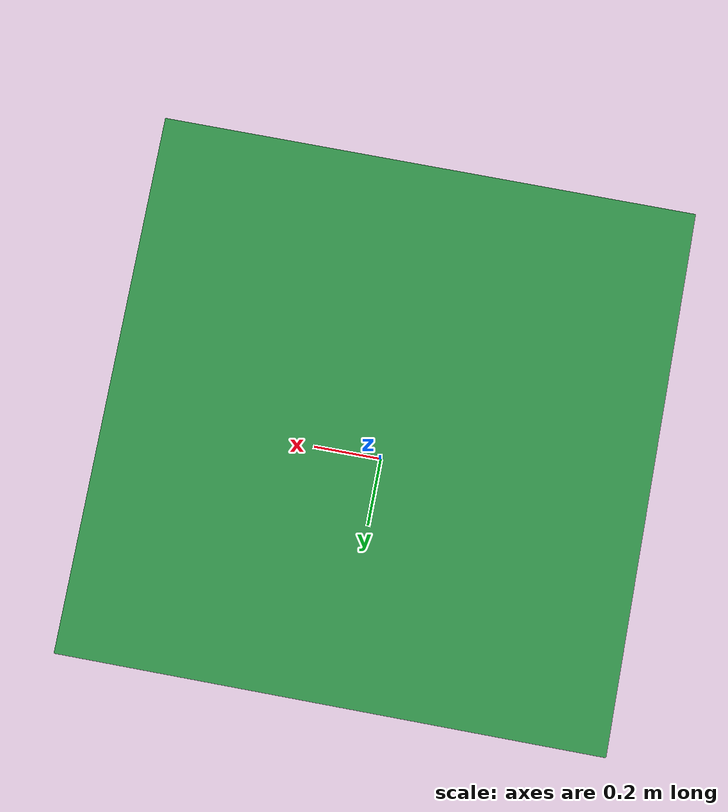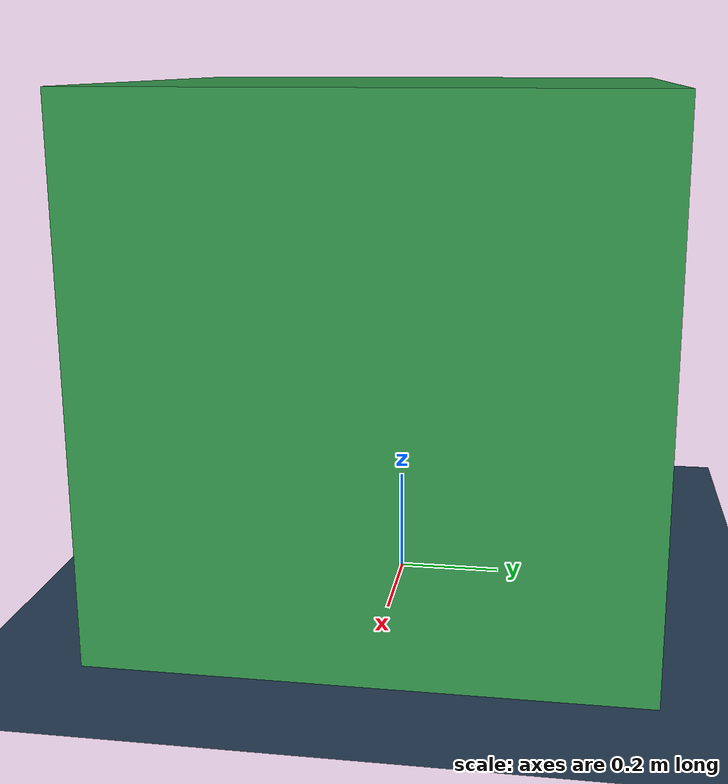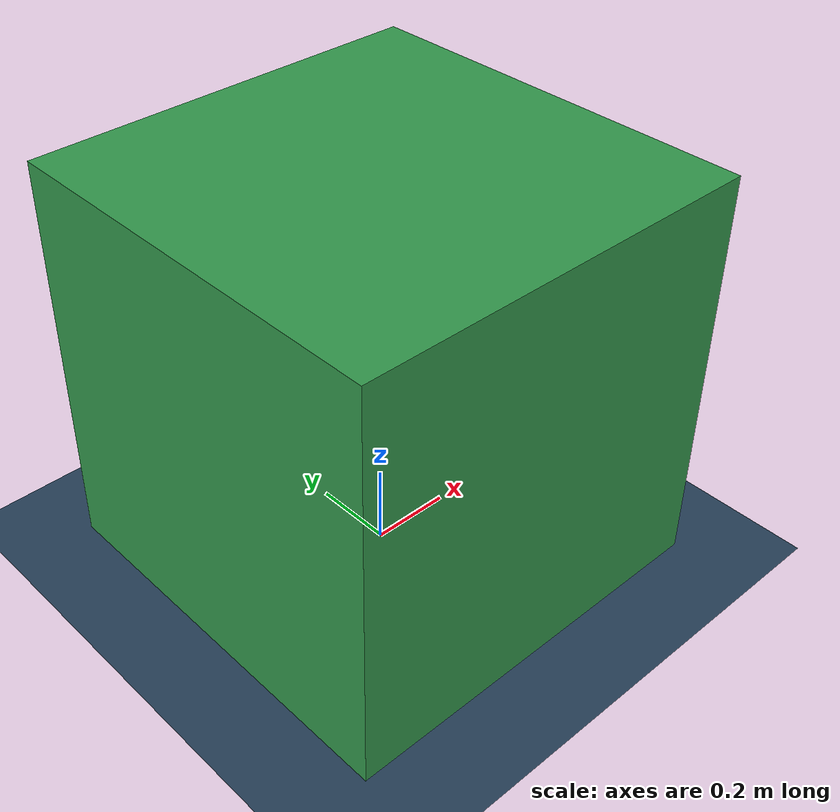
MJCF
<mujoco model="box_1d">
    <compiler angle="degree" />
    <option timestep="0.001" gravity="0 0 -9.81" />

    <asset>
        <texture type="skybox" builtin="gradient" rgb1="0.3 0.5 0.7" rgb2="0 0 0" width="512" height="3072"/>
        <texture type="2d" name="groundplane" builtin="checker" mark="edge" rgb1="0.2 0.3 0.4" rgb2="0.1 0.2 0.3"
            markrgb="0.8 0.8 0.8" width="300" height="300"/>
        <material name="groundplane" texture="groundplane" texuniform="true" texrepeat="5 5" reflectance="0.2"/>
    </asset>

    <worldbody>
        <light pos="0 0 1.5" dir="0 0 -1" directional="true"/>
        <geom name="ground" type="plane" pos="0 0 0" size="0 0 0.1" material="groundplane" friction="1 0.005 0.0001"/>

        <body name="box" pos="0 0 0.5">
            <inertial pos="0 0 0" mass="1" diaginertia="0.1667 0.1667 0.1667"/>
            <geom name="box_geom" type="box" size="0.5 0.5 0.5"
                rgba="0.2 0.6 0.3 1" friction="0.8 0.1 0.1"/>
            <joint name="slider" type="slide" axis="1 0 0"/>
            <site name="box_site" pos="0 0 0" size="0.01" rgba="0 1 0 1"/>
        </body>
    </worldbody>
    <sensor>
        <jointpos name="box_x_pos" joint="slider"/>
        <jointvel name="box_x_vel" joint="slider"/>
    </sensor>

    <actuator>
        <motor joint="slider" ctrlrange="-10 10" gear="1" />
    </actuator>
</mujoco>
